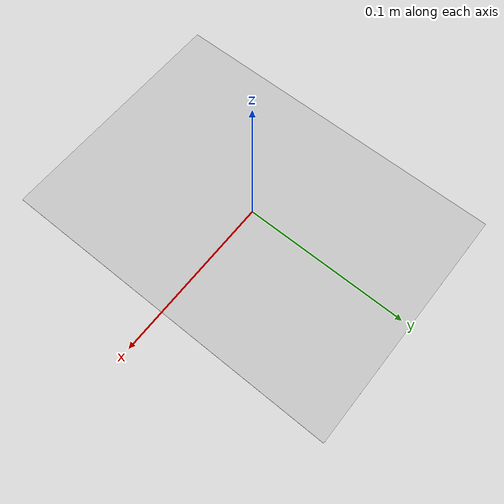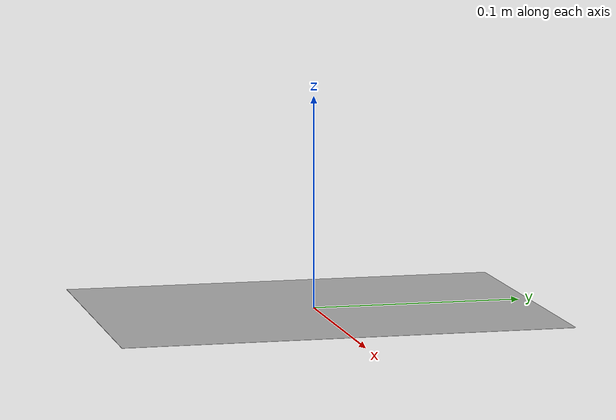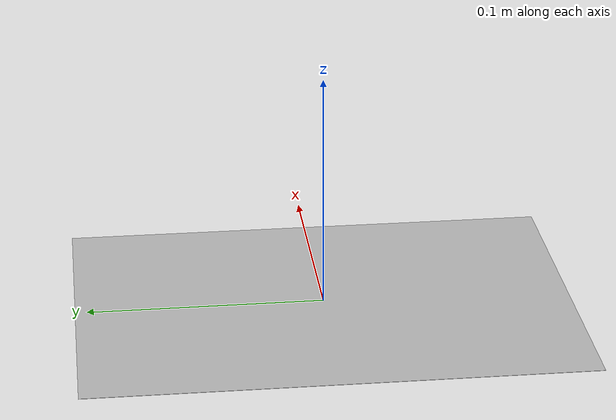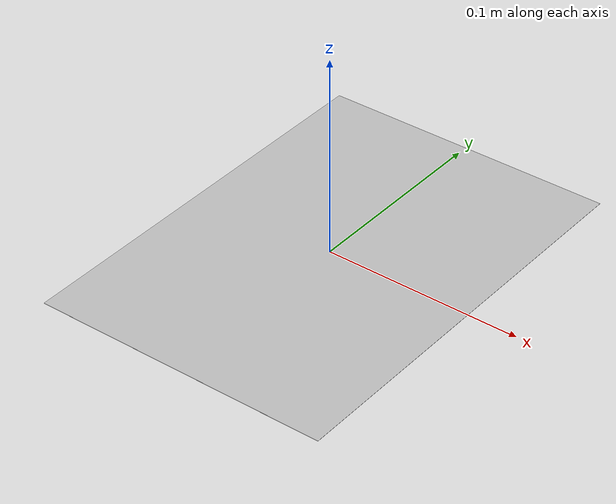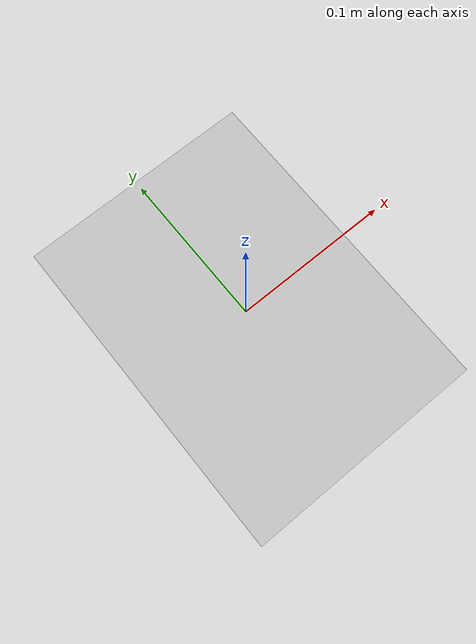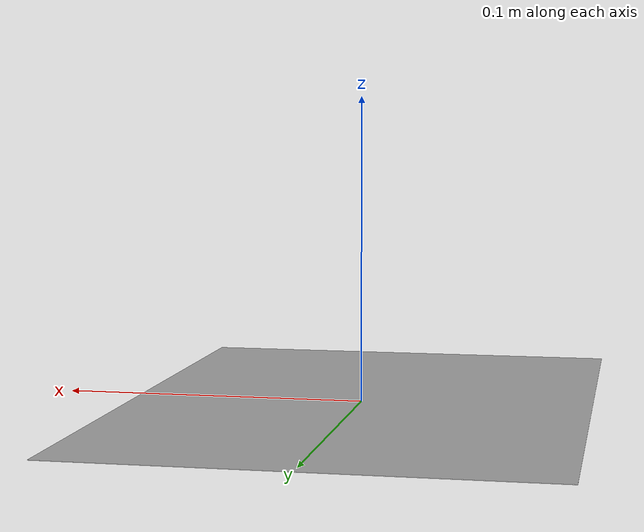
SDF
<?xml version="1.0" ?>
<sdf version="1.6">
  <model name="charucoboard">
    <static>true</static>
    <link name="board_link">
      <visual name="board_visual">
        <pose>0 0 0 0 0 0</pose>
        <geometry>
          <plane>
            <normal>0 0 1</normal>
            <size>0.15 0.21</size>
          </plane>
        </geometry>
        <material>
          <script>
            <!-- note: no 'media' prefix -->
            <uri>model://charucoboard/materials/scripts</uri>
            <uri>model://charucoboard/materials/textures</uri>
            <name>Charuco5x7</name>
          </script>
        </material>
      </visual>
    </link>
  </model>
</sdf>
